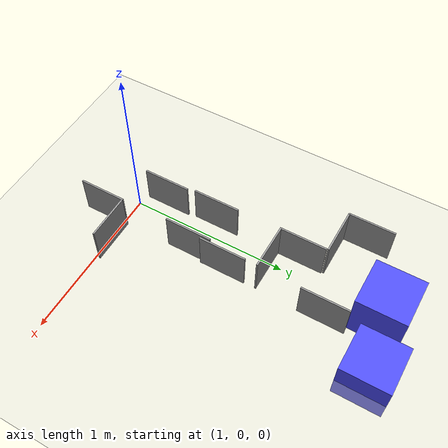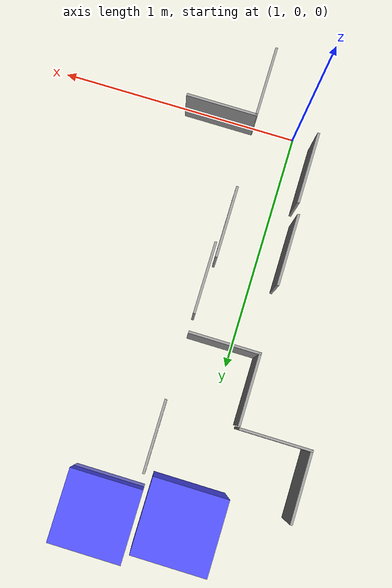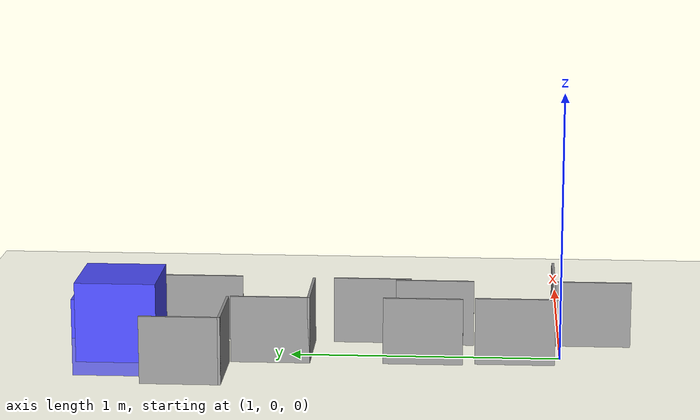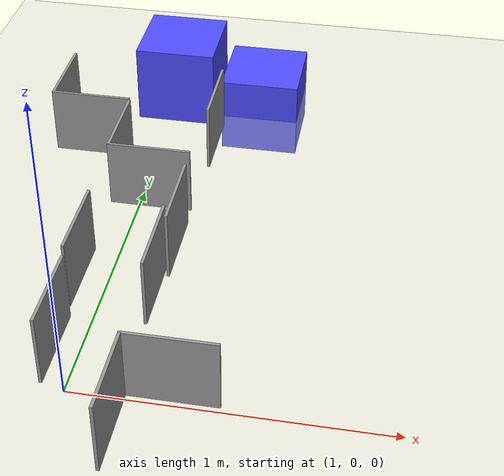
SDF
<sdf version="1.10">
 <world name="default">
  <model name="ground_plane">
   <static>true</static>
   <link name="link">
    <collision name="collision">
     <geometry><plane><normal>0 0 1</normal><size>1 1</size></plane></geometry>
    </collision>
    <visual name="visual">
     <geometry><plane><normal>0 0 1</normal><size>100 100</size></plane></geometry>
     <material>
      <ambient>0.800000012 0.800000012 0.800000012 1</ambient>
      <diffuse>0.800000012 0.800000012 0.800000012 1</diffuse>
      <specular>0.800000012 0.800000012 0.800000012 1</specular>
     </material>
    </visual>
    <inertial>
     <mass>1</mass>
     <inertia><ixx>1</ixx><ixy>0</ixy><ixz>0</ixz><iyy>1</iyy><iyz>0</iyz><izz>1</izz></inertia>
    </inertial>
   </link>
  </model>
  <model name="Box_Blue">
   <link name="link_0">
    <inertial>
     <mass>1</mass>
     <inertia>
      <ixx>0.166667</ixx>
      <ixy>0</ixy>
      <ixz>0</ixz>
      <iyy>0.166667</iyy>
      <iyz>0</iyz>
      <izz>0.166667</izz>
     </inertia>
    </inertial>
    <visual name="visual">
     <geometry><box><size>0.3 0.3 0.3</size></box></geometry>
     <material>
      <lighting>1</lighting>
      <script><uri>file://media/materials/scripts/gazebo.material</uri><name>Gazebo/Grey</name></script>
      <ambient>0.3 0.3 1 1</ambient>
      <diffuse>0.7 0.7 0.7 1</diffuse>
      <specular>0.01 0.01 0.01 1</specular>
      <emissive>0 0 0 1</emissive>
      <shader type="vertex"><normal_map>__default__</normal_map></shader>
     </material>
    </visual>
    <collision name="collision">
     <geometry><box><size>0.3 0.3 0.3</size></box></geometry>
     <surface>
      <friction>
       <ode><mu>1</mu><mu2>1</mu2><fdir1>0 0 0</fdir1><slip1>0</slip1><slip2>0</slip2></ode>
       <torsional>
        <coefficient>1</coefficient>
        <patch_radius>0</patch_radius>
        <surface_radius>0</surface_radius>
        <use_patch_radius>1</use_patch_radius>
        <ode><slip>0</slip></ode>
       </torsional>
      </friction>
      <bounce><restitution_coefficient>0</restitution_coefficient><threshold>1e+06</threshold></bounce>
      <contact>
       <collide_without_contact>0</collide_without_contact>
       <collide_without_contact_bitmask>1</collide_without_contact_bitmask>
       <collide_bitmask>1</collide_bitmask>
       <ode>
        <soft_cfm>0</soft_cfm>
        <soft_erp>0.2</soft_erp>
        <kp>1e+13</kp>
        <kd>1</kd>
        <max_vel>0.01</max_vel>
        <min_depth>0</min_depth>
       </ode>
       <bullet>
        <split_impulse>1</split_impulse>
        <split_impulse_penetration_threshold>-0.01</split_impulse_penetration_threshold>
        <soft_cfm>0</soft_cfm>
        <soft_erp>0.2</soft_erp>
        <kp>1e+13</kp>
        <kd>1</kd>
       </bullet>
      </contact>
     </surface>
    </collision>
   </link>
   <static>0</static>
   <pose>1.32643 1.71011 0 0 -0 0</pose>
  </model>
  <model name="Box_Blue_clone">
   <link name="link_0">
    <inertial>
     <mass>1</mass>
     <inertia>
      <ixx>0.166667</ixx>
      <ixy>0</ixy>
      <ixz>0</ixz>
      <iyy>0.166667</iyy>
      <iyz>0</iyz>
      <izz>0.166667</izz>
     </inertia>
    </inertial>
    <visual name="visual">
     <geometry><box><size>0.3 0.3 0.3</size></box></geometry>
     <material>
      <lighting>1</lighting>
      <script><uri>file://media/materials/scripts/gazebo.material</uri><name>Gazebo/Grey</name></script>
      <ambient>0.3 0.3 1 1</ambient>
      <diffuse>0.7 0.7 0.7 1</diffuse>
      <specular>0.01 0.01 0.01 1</specular>
      <emissive>0 0 0 1</emissive>
      <shader type="vertex"><normal_map>__default__</normal_map></shader>
     </material>
    </visual>
    <collision name="collision">
     <geometry><box><size>0.3 0.3 0.3</size></box></geometry>
     <surface>
      <friction>
       <ode><mu>1</mu><mu2>1</mu2><fdir1>0 0 0</fdir1><slip1>0</slip1><slip2>0</slip2></ode>
       <torsional>
        <coefficient>1</coefficient>
        <patch_radius>0</patch_radius>
        <surface_radius>0</surface_radius>
        <use_patch_radius>1</use_patch_radius>
        <ode><slip>0</slip></ode>
       </torsional>
      </friction>
      <bounce><restitution_coefficient>0</restitution_coefficient><threshold>1e+06</threshold></bounce>
      <contact>
       <collide_without_contact>0</collide_without_contact>
       <collide_without_contact_bitmask>1</collide_without_contact_bitmask>
       <collide_bitmask>1</collide_bitmask>
       <ode>
        <soft_cfm>0</soft_cfm>
        <soft_erp>0.2</soft_erp>
        <kp>1e+13</kp>
        <kd>1</kd>
        <max_vel>0.01</max_vel>
        <min_depth>0</min_depth>
       </ode>
       <bullet>
        <split_impulse>1</split_impulse>
        <split_impulse_penetration_threshold>-0.01</split_impulse_penetration_threshold>
        <soft_cfm>0</soft_cfm>
        <soft_erp>0.2</soft_erp>
        <kp>1e+13</kp>
        <kd>1</kd>
       </bullet>
      </contact>
     </surface>
    </collision>
   </link>
   <static>0</static>
   <pose>1.00721 1.63827 0.15 0 -0 0</pose>
  </model>
  <model name="Maze_I_H_clone">
   <pose>1.19402 1.34673 0 0 -0 0</pose>
   <link name="Wall_0">
    <collision name="Wall_0_Collision">
     <geometry><box><size>0.294 0.01 0.25</size></box></geometry>
     <pose>0 0 0.125 0 -0 0</pose>
    </collision>
    <visual name="Wall_0_Visual">
     <pose>0 0 0.125 0 -0 0</pose>
     <geometry><box><size>0.294 0.01 0.25</size></box></geometry>
     <material>
      <script><uri>file://media/materials/scripts/gazebo.material</uri><name>Gazebo/Grey</name></script>
      <ambient>1 1 1 1</ambient>
     </material>
     <meta><layer>0</layer></meta>
    </visual>
    <pose>0 0 0 0 -0 1.5708</pose>
   </link>
   <static>1</static>
  </model>
  <model name="Maze_L_RB_clone">
   <pose>0.748164 1.36751 0 0 -0 0</pose>
   <link name="Wall_0">
    <collision name="Wall_0_Collision">
     <geometry><box><size>0.294 0.01 0.25</size></box></geometry>
     <pose>0 0 0.125 0 -0 0</pose>
    </collision>
    <visual name="Wall_0_Visual">
     <pose>0 0 0.125 0 -0 0</pose>
     <geometry><box><size>0.294 0.01 0.25</size></box></geometry>
     <material>
      <script><uri>file://media/materials/scripts/gazebo.material</uri><name>Gazebo/Grey</name></script>
      <ambient>1 1 1 1</ambient>
     </material>
     <meta><layer>0</layer></meta>
    </visual>
    <pose>0 -0.142 0 0 -0 0</pose>
   </link>
   <link name="Wall_2">
    <collision name="Wall_2_Collision">
     <geometry><box><size>0.294 0.01 0.25</size></box></geometry>
     <pose>0 0 0.125 0 -0 0</pose>
    </collision>
    <visual name="Wall_2_Visual">
     <pose>0 0 0.125 0 -0 0</pose>
     <geometry><box><size>0.294 0.01 0.25</size></box></geometry>
     <material>
      <script><uri>file://media/materials/scripts/gazebo.material</uri><name>Gazebo/Grey</name></script>
      <ambient>1 1 1 1</ambient>
     </material>
     <meta><layer>0</layer></meta>
    </visual>
    <pose>-0.142 0 0 0 -0 1.5708</pose>
   </link>
   <static>1</static>
  </model>
  <model name="Maze_L_RB_clone_0">
   <pose>1.03964 1.06941 0 0 -0 0</pose>
   <link name="Wall_0">
    <collision name="Wall_0_Collision">
     <geometry><box><size>0.294 0.01 0.25</size></box></geometry>
     <pose>0 0 0.125 0 -0 0</pose>
    </collision>
    <visual name="Wall_0_Visual">
     <pose>0 0 0.125 0 -0 0</pose>
     <geometry><box><size>0.294 0.01 0.25</size></box></geometry>
     <material>
      <script><uri>file://media/materials/scripts/gazebo.material</uri><name>Gazebo/Grey</name></script>
      <ambient>1 1 1 1</ambient>
     </material>
     <meta><layer>0</layer></meta>
    </visual>
    <pose>0 -0.142 0 0 -0 0</pose>
   </link>
   <link name="Wall_2">
    <collision name="Wall_2_Collision">
     <geometry><box><size>0.294 0.01 0.25</size></box></geometry>
     <pose>0 0 0.125 0 -0 0</pose>
    </collision>
    <visual name="Wall_2_Visual">
     <pose>0 0 0.125 0 -0 0</pose>
     <geometry><box><size>0.294 0.01 0.25</size></box></geometry>
     <material>
      <script><uri>file://media/materials/scripts/gazebo.material</uri><name>Gazebo/Grey</name></script>
      <ambient>1 1 1 1</ambient>
     </material>
     <meta><layer>0</layer></meta>
    </visual>
    <pose>-0.142 0 0 0 -0 1.5708</pose>
   </link>
   <static>1</static>
  </model>
  <model name="Maze_I_H_clone_0">
   <pose>1.18583 0.705881 0 0 -0 0</pose>
   <link name="Wall_0">
    <collision name="Wall_0_Collision">
     <geometry><box><size>0.294 0.01 0.25</size></box></geometry>
     <pose>0 0 0.125 0 -0 0</pose>
    </collision>
    <visual name="Wall_0_Visual">
     <pose>0 0 0.125 0 -0 0</pose>
     <geometry><box><size>0.294 0.01 0.25</size></box></geometry>
     <material>
      <script><uri>file://media/materials/scripts/gazebo.material</uri><name>Gazebo/Grey</name></script>
      <ambient>1 1 1 1</ambient>
     </material>
     <meta><layer>0</layer></meta>
    </visual>
    <pose>0 0 0 0 -0 1.5708</pose>
   </link>
   <static>1</static>
  </model>
  <model name="Maze_I_H_clone_1">
   <pose>1.16718 0.469333 0 0 -0 0</pose>
   <link name="Wall_0">
    <collision name="Wall_0_Collision">
     <geometry><box><size>0.294 0.01 0.25</size></box></geometry>
     <pose>0 0 0.125 0 -0 0</pose>
    </collision>
    <visual name="Wall_0_Visual">
     <pose>0 0 0.125 0 -0 0</pose>
     <geometry><box><size>0.294 0.01 0.25</size></box></geometry>
     <material>
      <script><uri>file://media/materials/scripts/gazebo.material</uri><name>Gazebo/Grey</name></script>
      <ambient>1 1 1 1</ambient>
     </material>
     <meta><layer>0</layer></meta>
    </visual>
    <pose>0 0 0 0 -0 1.5708</pose>
   </link>
   <static>1</static>
  </model>
  <model name="Maze_L_LB_clone">
   <pose>1.31941 -0.120143 0 0 -0 0</pose>
   <link name="Wall_0">
    <collision name="Wall_0_Collision">
     <geometry><box><size>0.294 0.01 0.25</size></box></geometry>
     <pose>0 0 0.125 0 -0 0</pose>
    </collision>
    <visual name="Wall_0_Visual">
     <pose>0 0 0.125 0 -0 0</pose>
     <geometry><box><size>0.294 0.01 0.25</size></box></geometry>
     <material>
      <script><uri>file://media/materials/scripts/gazebo.material</uri><name>Gazebo/Grey</name></script>
      <ambient>1 1 1 1</ambient>
     </material>
     <meta><layer>0</layer></meta>
    </visual>
    <pose>0 0.142 0 0 -0 0</pose>
   </link>
   <link name="Wall_2">
    <collision name="Wall_2_Collision">
     <geometry><box><size>0.294 0.01 0.25</size></box></geometry>
     <pose>0 0 0.125 0 -0 0</pose>
    </collision>
    <visual name="Wall_2_Visual">
     <pose>0 0 0.125 0 -0 0</pose>
     <geometry><box><size>0.294 0.01 0.25</size></box></geometry>
     <material>
      <script><uri>file://media/materials/scripts/gazebo.material</uri><name>Gazebo/Grey</name></script>
      <ambient>1 1 1 1</ambient>
     </material>
     <meta><layer>0</layer></meta>
    </visual>
    <pose>-0.142 0 0 0 0 -1.5708</pose>
   </link>
   <static>1</static>
  </model>
  <model name="Maze_I_H_clone_2">
   <pose>0.920533 0.168706 0 0 -0 0</pose>
   <link name="Wall_0">
    <collision name="Wall_0_Collision">
     <geometry><box><size>0.294 0.01 0.25</size></box></geometry>
     <pose>0 0 0.125 0 -0 0</pose>
    </collision>
    <visual name="Wall_0_Visual">
     <pose>0 0 0.125 0 -0 0</pose>
     <geometry><box><size>0.294 0.01 0.25</size></box></geometry>
     <material>
      <script><uri>file://media/materials/scripts/gazebo.material</uri><name>Gazebo/Grey</name></script>
      <ambient>1 1 1 1</ambient>
     </material>
     <meta><layer>0</layer></meta>
    </visual>
    <pose>0 0 0 0 -0 1.5708</pose>
   </link>
   <static>1</static>
  </model>
  <model name="Maze_I_H_clone_3">
   <pose>0.906486 0.506536 0 0 -0 0</pose>
   <link name="Wall_0">
    <collision name="Wall_0_Collision">
     <geometry><box><size>0.294 0.01 0.25</size></box></geometry>
     <pose>0 0 0.125 0 -0 0</pose>
    </collision>
    <visual name="Wall_0_Visual">
     <pose>0 0 0.125 0 -0 0</pose>
     <geometry><box><size>0.294 0.01 0.25</size></box></geometry>
     <material>
      <script><uri>file://media/materials/scripts/gazebo.material</uri><name>Gazebo/Grey</name></script>
      <ambient>1 1 1 1</ambient>
     </material>
     <meta><layer>0</layer></meta>
    </visual>
    <pose>0 0 0 0 -0 1.5708</pose>
   </link>
   <static>1</static>
  </model>
 </world>
</sdf>
